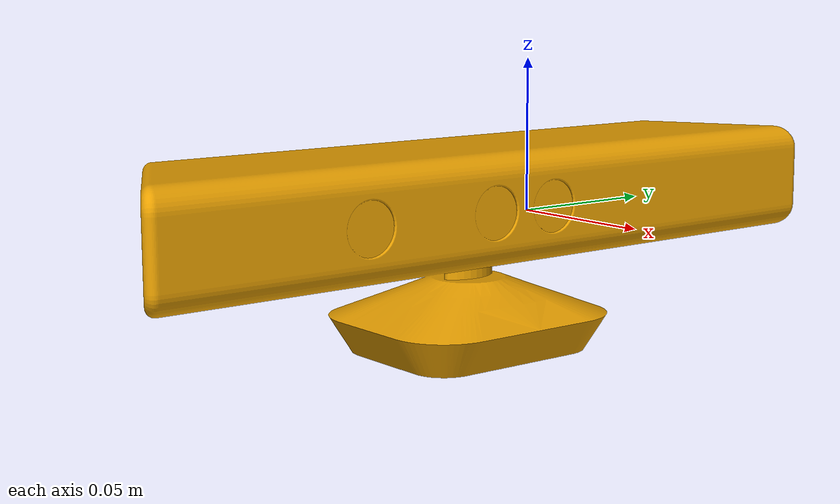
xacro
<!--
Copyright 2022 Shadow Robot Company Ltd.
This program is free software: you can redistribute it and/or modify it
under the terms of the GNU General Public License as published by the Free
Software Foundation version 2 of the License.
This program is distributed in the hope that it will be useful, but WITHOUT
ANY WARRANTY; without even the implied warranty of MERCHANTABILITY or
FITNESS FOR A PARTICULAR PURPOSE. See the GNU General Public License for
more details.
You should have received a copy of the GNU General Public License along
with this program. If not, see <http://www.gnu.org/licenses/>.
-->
<?xml version="1.0"?>

<robot name="sensor_ensenso" xmlns:xacro="http://ros.org/wiki/xacro">

  <xacro:property name="M_PI" value="3.1415926535897931" />

  <xacro:arg name="camera_name" default="camera"/>

  <xacro:include filename="$(find sr_description_common)/sensors/ensenso.gazebo.xacro"/>

  <xacro:macro name="sensor_ensenso">

    <gazebo><static>true</static></gazebo>
    <link name="$(arg camera_name)_link">
      <visual>
       <origin xyz="0 0 0" rpy="0 0 0"/>
        <geometry>
         <mesh filename="package://sr_description_common/sensors/kinect.dae"/>
        </geometry>
      </visual>
  	  <collision>
        <origin xyz="0.0 0.0 0.0" rpy="0 0 0"/>
  	    <geometry>
  	      <box size="0.045 0.150 0.045"/>
  	    </geometry>
  	  </collision>
      <inertial>
        <mass value="0.564" />
        <origin xyz="0 0 0" />
        <inertia ixx="0.0" ixy="0.0" ixz="0.0"
                 iyy="0.0" iyz="0.0"
                 izz="0.0"/>
      </inertial>
    </link>

    <joint name="camera_rgb_joint" type="fixed">
      <origin xyz="0 0 0" rpy="0 0 0"/>
      <parent link="$(arg camera_name)_link"/>
      <child link="$(arg camera_name)_rgb_frame"/>
    </joint>
    <link name="$(arg camera_name)_rgb_frame"/>

    <joint name="camera_rgb_optical_joint" type="fixed">
      <origin xyz="0 0 0" rpy="${-M_PI/2} 0 ${-M_PI/2}" />
      <parent link="$(arg camera_name)_rgb_frame" />
      <child link="$(arg camera_name)_rgb_optical_frame" />
    </joint>
    <link name="$(arg camera_name)_rgb_optical_frame"/>

    <joint name="camera_depth_optical_joint" type="fixed">
      <origin xyz="-0.048 0.046 -0.036" rpy="-0.010 0.010 -0.001"/>
      <parent link="$(arg camera_name)_rgb_optical_frame"/>
      <child link="$(arg camera_name)_depth_optical_frame"/>
    </joint>
    <link name="$(arg camera_name)_depth_optical_frame"/>

    <joint name="camera_depth_joint" type="fixed">
      <origin xyz="0 0 0" rpy="0 ${-M_PI/2} ${M_PI/2}"/>
      <parent link="$(arg camera_name)_depth_optical_frame"/>
      <child link="$(arg camera_name)_depth_frame"/>
    </joint>
    <link name="$(arg camera_name)_depth_frame"/>

    <joint name="camera_left_ir_joint" type="fixed">
      <origin xyz="0 0.05 0" rpy="0 0 0"/>
      <parent link="$(arg camera_name)_depth_frame"/>
      <child link="$(arg camera_name)_left_ir_frame"/>
    </joint>
    <link name="$(arg camera_name)_left_ir_frame"/>

    <joint name="camera_right_ir_joint" type="fixed">
      <origin xyz="0 -0.05 0" rpy="0 0 0"/>
      <parent link="$(arg camera_name)_depth_frame"/>
      <child link="$(arg camera_name)_right_ir_frame"/>
    </joint>
    <link name="$(arg camera_name)_right_ir_frame"/>

    <!-- Kinect sensor for simulation -->
    <sim_ensenso_sensor camera_name="$(arg camera_name)"/>
  </xacro:macro>

  <xacro:sensor_ensenso/>

</robot>
